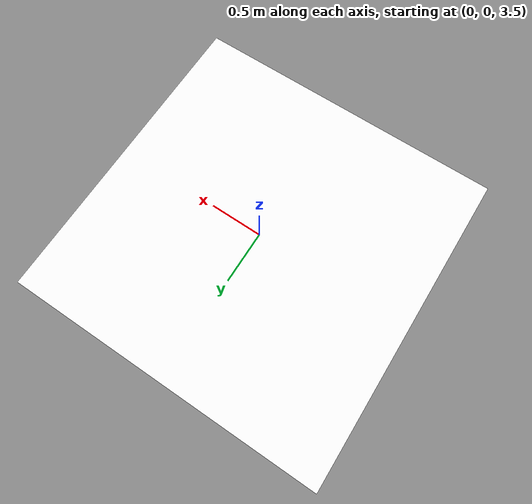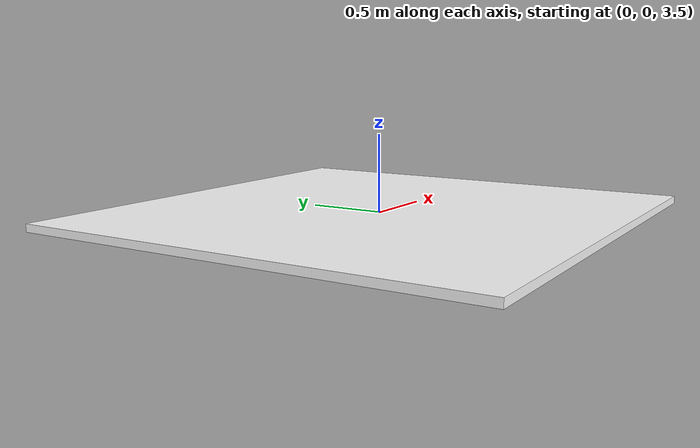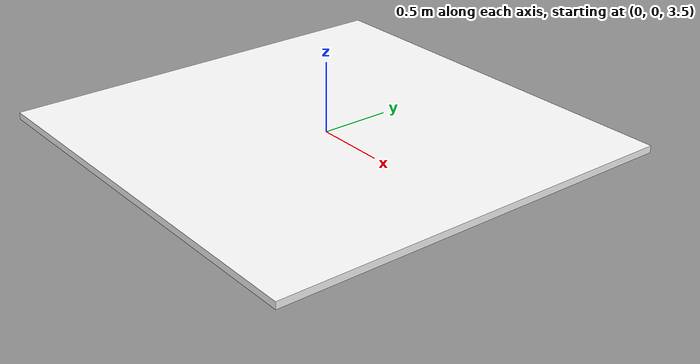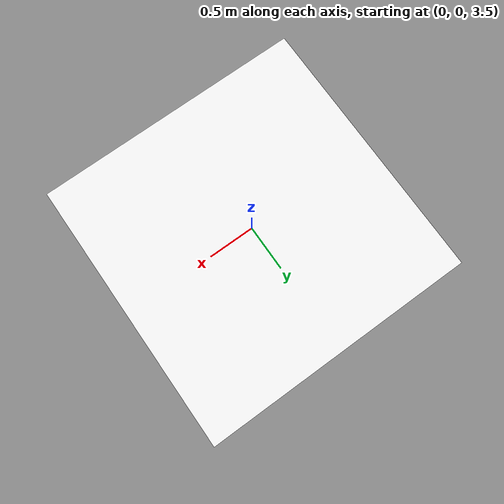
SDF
<?xml version="1.0" ?>
<sdf version="1.7">
    <model name="ground_forest">
      <static>true</static>
      <pose>0 0 3.5 0 0 0</pose>
      <link name="ground_forest_link">
        <inertial>
          <inertia>
            <ixx>1</ixx>
            <ixy>0</ixy>
            <ixz>0</ixz>
            <iyy>1</iyy>
            <iyz>0</iyz>
            <izz>1</izz>
          </inertia>
          <mass>1.0</mass>
        </inertial>
        <collision name="ground_forest_collision">
          <geometry>
            <box>
              <size>3 3 0.05</size>
            </box>
          </geometry>
        </collision>
        <visual name="ground_forest_visual">
          <geometry>
            <box>
              <size>3 3 0.05</size>
            </box>
          </geometry>
            <material>
              <diffuse>1.0 1.0 1.0</diffuse>
              <specular>1.0 1.0 1.0</specular>
              <pbr>
                <metal>
                  <albedo_map>file:///root/ignition_textures/ground_forest/materials/textures/GroundForest003_COL_VAR1_3K.jpg</albedo_map>
                  <normal_map>file:///root/ignition_textures/ground_forest/materials/textures/GroundForest003_NRM_3K.jpg</normal_map>
                  <roughness_map>file:///root/ignition_textures/ground_forest/materials/textures/GroundForest003_DISP_3K.jpg</roughness_map>
                  <roughness>0.9</roughness>
                </metal>
              </pbr>
              <!-- fallback to classic if no PBR support-->
              <script>
                <uri>file:///root/ignition_textures/ground_forest/materials/scripts</uri>
                <uri>file:///root/ignition_textures/ground_forest/materials/textures</uri>
                <name>GroundForest/Diffuse</name>
              </script>
            </material>
        </visual>
      </link>
    </model>
</sdf>
